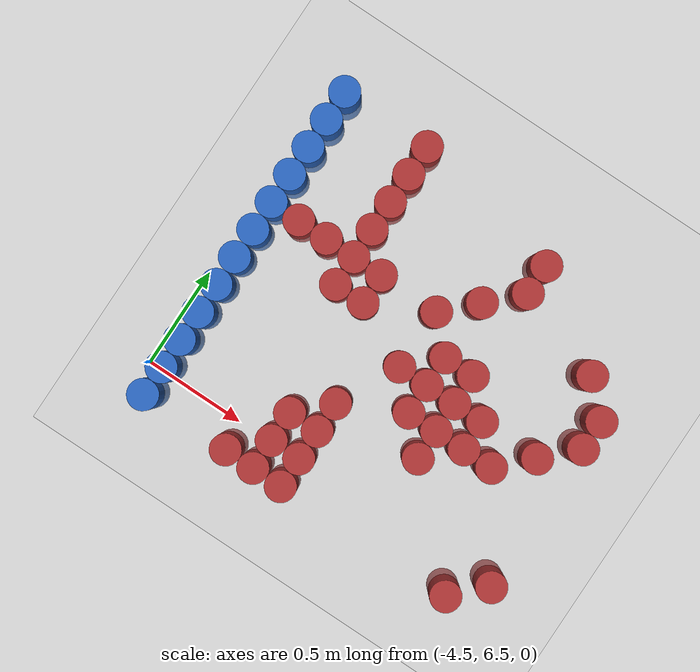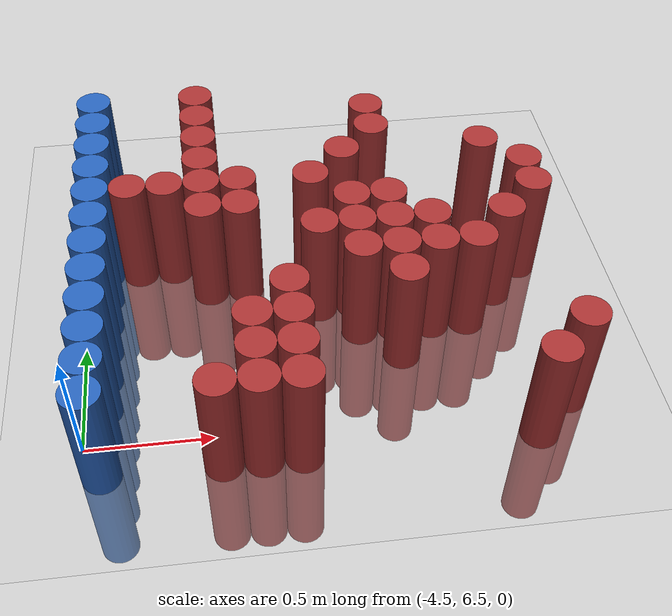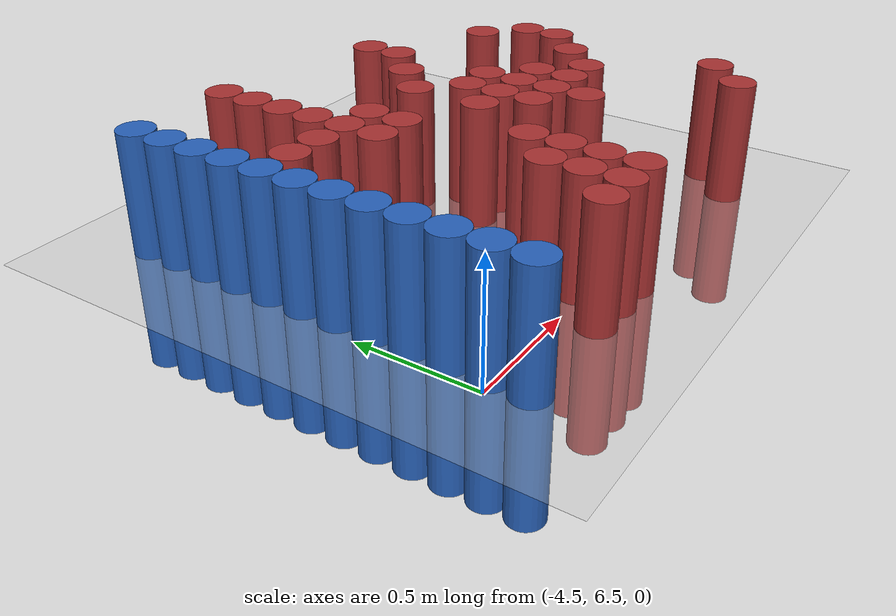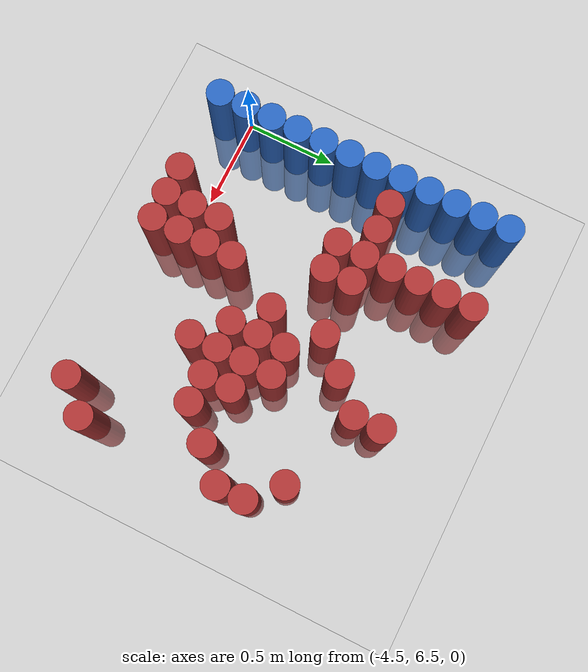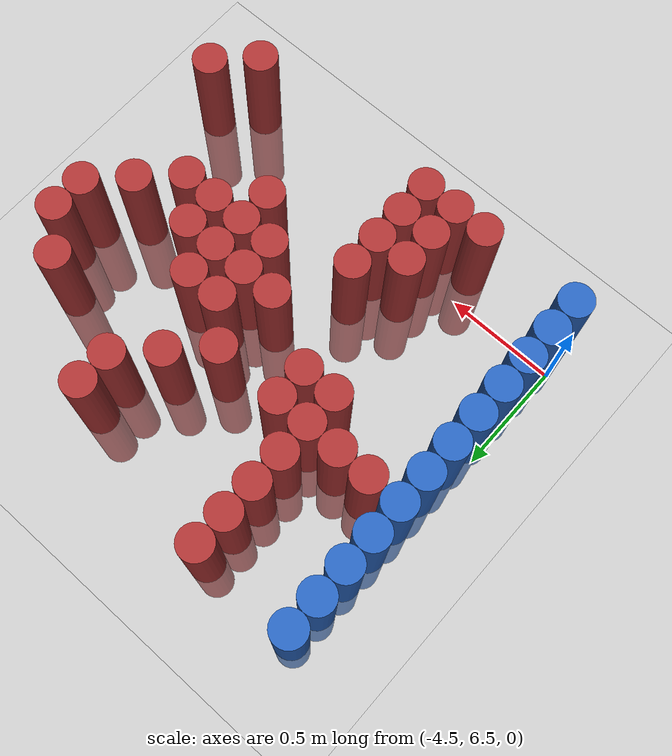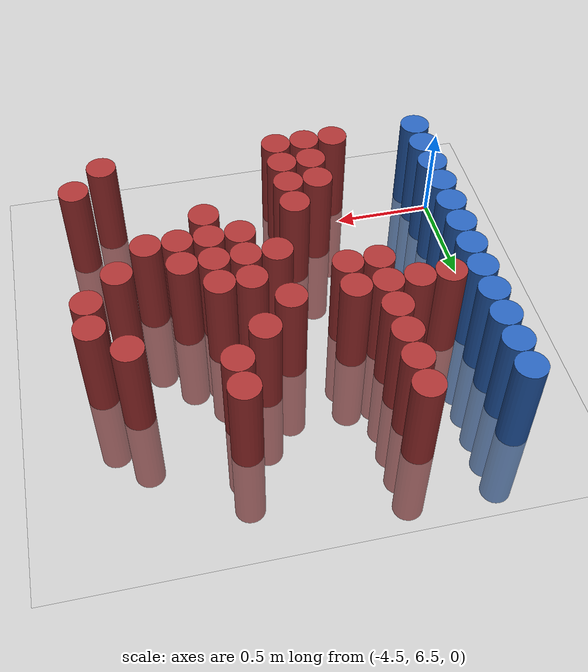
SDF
<sdf version="1.6">
 <world name="default">
  <model name="ground_plane">
   <static>1</static>
   <link name="link">
    <collision name="collision">
     <geometry><plane><normal>0 0 1</normal><size>100 100</size></plane></geometry>
     <surface><friction><ode><mu>100</mu><mu2>50</mu2></ode></friction></surface>
    </collision>
    <visual name="visual">
     <cast_shadows>0</cast_shadows>
     <geometry><plane><normal>0 0 1</normal><size>100 100</size></plane></geometry>
     <material>
      <script><uri>file://media/materials/scripts/gazebo.material</uri><name>Gazebo/Grey</name></script>
     </material>
    </visual>
   </link>
  </model>
  <model name="unit_cylinder_104">
   <static>1</static>
   <pose>-4.425000 6.375000 0.000000 0.000000 0.000000 0.000000</pose>
   <link name="link">
    <inertial>
     <mass>1</mass>
     <inertia><ixx>0.145833</ixx><ixy>0</ixy><ixz>0</ixz><iyy>0.145833</iyy><iyz>0</iyz><izz>0.125</izz></inertia>
    </inertial>
    <collision name="collision">
     <geometry><cylinder><radius>0.075000</radius><length>1</length></cylinder></geometry>
    </collision>
    <visual name="visual">
     <geometry><cylinder><radius>0.075000</radius><length>1</length></cylinder></geometry>
     <material>
      <ambient>0.152000 0.379000 0.720000 1</ambient>
      <diffuse>0.152000 0.379000 0.720000 1</diffuse>
     </material>
     <material>
      <script><name>Gazebo/Grey</name><uri>file://media/materials/scripts/gazebo.material</uri></script>
     </material>
    </visual>
   </link>
  </model>
  <model name="unit_cylinder_105">
   <static>1</static>
   <pose>-4.425000 6.525000 0.000000 0.000000 0.000000 0.000000</pose>
   <link name="link">
    <inertial>
     <mass>1</mass>
     <inertia><ixx>0.145833</ixx><ixy>0</ixy><ixz>0</ixz><iyy>0.145833</iyy><iyz>0</iyz><izz>0.125</izz></inertia>
    </inertial>
    <collision name="collision">
     <geometry><cylinder><radius>0.075000</radius><length>1</length></cylinder></geometry>
    </collision>
    <visual name="visual">
     <geometry><cylinder><radius>0.075000</radius><length>1</length></cylinder></geometry>
     <material>
      <ambient>0.152000 0.379000 0.720000 1</ambient>
      <diffuse>0.152000 0.379000 0.720000 1</diffuse>
     </material>
     <material>
      <script><name>Gazebo/Grey</name><uri>file://media/materials/scripts/gazebo.material</uri></script>
     </material>
    </visual>
   </link>
  </model>
  <model name="unit_cylinder_106">
   <static>1</static>
   <pose>-4.425000 6.675000 0.000000 0.000000 0.000000 0.000000</pose>
   <link name="link">
    <inertial>
     <mass>1</mass>
     <inertia><ixx>0.145833</ixx><ixy>0</ixy><ixz>0</ixz><iyy>0.145833</iyy><iyz>0</iyz><izz>0.125</izz></inertia>
    </inertial>
    <collision name="collision">
     <geometry><cylinder><radius>0.075000</radius><length>1</length></cylinder></geometry>
    </collision>
    <visual name="visual">
     <geometry><cylinder><radius>0.075000</radius><length>1</length></cylinder></geometry>
     <material>
      <ambient>0.152000 0.379000 0.720000 1</ambient>
      <diffuse>0.152000 0.379000 0.720000 1</diffuse>
     </material>
     <material>
      <script><name>Gazebo/Grey</name><uri>file://media/materials/scripts/gazebo.material</uri></script>
     </material>
    </visual>
   </link>
  </model>
  <model name="unit_cylinder_107">
   <static>1</static>
   <pose>-4.425000 6.825000 0.000000 0.000000 0.000000 0.000000</pose>
   <link name="link">
    <inertial>
     <mass>1</mass>
     <inertia><ixx>0.145833</ixx><ixy>0</ixy><ixz>0</ixz><iyy>0.145833</iyy><iyz>0</iyz><izz>0.125</izz></inertia>
    </inertial>
    <collision name="collision">
     <geometry><cylinder><radius>0.075000</radius><length>1</length></cylinder></geometry>
    </collision>
    <visual name="visual">
     <geometry><cylinder><radius>0.075000</radius><length>1</length></cylinder></geometry>
     <material>
      <ambient>0.152000 0.379000 0.720000 1</ambient>
      <diffuse>0.152000 0.379000 0.720000 1</diffuse>
     </material>
     <material>
      <script><name>Gazebo/Grey</name><uri>file://media/materials/scripts/gazebo.material</uri></script>
     </material>
    </visual>
   </link>
  </model>
  <model name="unit_cylinder_108">
   <static>1</static>
   <pose>-4.425000 6.975000 0.000000 0.000000 0.000000 0.000000</pose>
   <link name="link">
    <inertial>
     <mass>1</mass>
     <inertia><ixx>0.145833</ixx><ixy>0</ixy><ixz>0</ixz><iyy>0.145833</iyy><iyz>0</iyz><izz>0.125</izz></inertia>
    </inertial>
    <collision name="collision">
     <geometry><cylinder><radius>0.075000</radius><length>1</length></cylinder></geometry>
    </collision>
    <visual name="visual">
     <geometry><cylinder><radius>0.075000</radius><length>1</length></cylinder></geometry>
     <material>
      <ambient>0.152000 0.379000 0.720000 1</ambient>
      <diffuse>0.152000 0.379000 0.720000 1</diffuse>
     </material>
     <material>
      <script><name>Gazebo/Grey</name><uri>file://media/materials/scripts/gazebo.material</uri></script>
     </material>
    </visual>
   </link>
  </model>
  <model name="unit_cylinder_109">
   <static>1</static>
   <pose>-4.425000 7.125000 0.000000 0.000000 0.000000 0.000000</pose>
   <link name="link">
    <inertial>
     <mass>1</mass>
     <inertia><ixx>0.145833</ixx><ixy>0</ixy><ixz>0</ixz><iyy>0.145833</iyy><iyz>0</iyz><izz>0.125</izz></inertia>
    </inertial>
    <collision name="collision">
     <geometry><cylinder><radius>0.075000</radius><length>1</length></cylinder></geometry>
    </collision>
    <visual name="visual">
     <geometry><cylinder><radius>0.075000</radius><length>1</length></cylinder></geometry>
     <material>
      <ambient>0.152000 0.379000 0.720000 1</ambient>
      <diffuse>0.152000 0.379000 0.720000 1</diffuse>
     </material>
     <material>
      <script><name>Gazebo/Grey</name><uri>file://media/materials/scripts/gazebo.material</uri></script>
     </material>
    </visual>
   </link>
  </model>
  <model name="unit_cylinder_110">
   <static>1</static>
   <pose>-4.425000 7.275000 0.000000 0.000000 0.000000 0.000000</pose>
   <link name="link">
    <inertial>
     <mass>1</mass>
     <inertia><ixx>0.145833</ixx><ixy>0</ixy><ixz>0</ixz><iyy>0.145833</iyy><iyz>0</iyz><izz>0.125</izz></inertia>
    </inertial>
    <collision name="collision">
     <geometry><cylinder><radius>0.075000</radius><length>1</length></cylinder></geometry>
    </collision>
    <visual name="visual">
     <geometry><cylinder><radius>0.075000</radius><length>1</length></cylinder></geometry>
     <material>
      <ambient>0.152000 0.379000 0.720000 1</ambient>
      <diffuse>0.152000 0.379000 0.720000 1</diffuse>
     </material>
     <material>
      <script><name>Gazebo/Grey</name><uri>file://media/materials/scripts/gazebo.material</uri></script>
     </material>
    </visual>
   </link>
  </model>
  <model name="unit_cylinder_111">
   <static>1</static>
   <pose>-4.425000 7.425000 0.000000 0.000000 0.000000 0.000000</pose>
   <link name="link">
    <inertial>
     <mass>1</mass>
     <inertia><ixx>0.145833</ixx><ixy>0</ixy><ixz>0</ixz><iyy>0.145833</iyy><iyz>0</iyz><izz>0.125</izz></inertia>
    </inertial>
    <collision name="collision">
     <geometry><cylinder><radius>0.075000</radius><length>1</length></cylinder></geometry>
    </collision>
    <visual name="visual">
     <geometry><cylinder><radius>0.075000</radius><length>1</length></cylinder></geometry>
     <material>
      <ambient>0.152000 0.379000 0.720000 1</ambient>
      <diffuse>0.152000 0.379000 0.720000 1</diffuse>
     </material>
     <material>
      <script><name>Gazebo/Grey</name><uri>file://media/materials/scripts/gazebo.material</uri></script>
     </material>
    </visual>
   </link>
  </model>
  <model name="unit_cylinder_112">
   <static>1</static>
   <pose>-4.425000 7.575000 0.000000 0.000000 0.000000 0.000000</pose>
   <link name="link">
    <inertial>
     <mass>1</mass>
     <inertia><ixx>0.145833</ixx><ixy>0</ixy><ixz>0</ixz><iyy>0.145833</iyy><iyz>0</iyz><izz>0.125</izz></inertia>
    </inertial>
    <collision name="collision">
     <geometry><cylinder><radius>0.075000</radius><length>1</length></cylinder></geometry>
    </collision>
    <visual name="visual">
     <geometry><cylinder><radius>0.075000</radius><length>1</length></cylinder></geometry>
     <material>
      <ambient>0.152000 0.379000 0.720000 1</ambient>
      <diffuse>0.152000 0.379000 0.720000 1</diffuse>
     </material>
     <material>
      <script><name>Gazebo/Grey</name><uri>file://media/materials/scripts/gazebo.material</uri></script>
     </material>
    </visual>
   </link>
  </model>
  <model name="unit_cylinder_113">
   <static>1</static>
   <pose>-4.425000 7.725000 0.000000 0.000000 0.000000 0.000000</pose>
   <link name="link">
    <inertial>
     <mass>1</mass>
     <inertia><ixx>0.145833</ixx><ixy>0</ixy><ixz>0</ixz><iyy>0.145833</iyy><iyz>0</iyz><izz>0.125</izz></inertia>
    </inertial>
    <collision name="collision">
     <geometry><cylinder><radius>0.075000</radius><length>1</length></cylinder></geometry>
    </collision>
    <visual name="visual">
     <geometry><cylinder><radius>0.075000</radius><length>1</length></cylinder></geometry>
     <material>
      <ambient>0.152000 0.379000 0.720000 1</ambient>
      <diffuse>0.152000 0.379000 0.720000 1</diffuse>
     </material>
     <material>
      <script><name>Gazebo/Grey</name><uri>file://media/materials/scripts/gazebo.material</uri></script>
     </material>
    </visual>
   </link>
  </model>
  <model name="unit_cylinder_114">
   <static>1</static>
   <pose>-4.425000 7.875000 0.000000 0.000000 0.000000 0.000000</pose>
   <link name="link">
    <inertial>
     <mass>1</mass>
     <inertia><ixx>0.145833</ixx><ixy>0</ixy><ixz>0</ixz><iyy>0.145833</iyy><iyz>0</iyz><izz>0.125</izz></inertia>
    </inertial>
    <collision name="collision">
     <geometry><cylinder><radius>0.075000</radius><length>1</length></cylinder></geometry>
    </collision>
    <visual name="visual">
     <geometry><cylinder><radius>0.075000</radius><length>1</length></cylinder></geometry>
     <material>
      <ambient>0.152000 0.379000 0.720000 1</ambient>
      <diffuse>0.152000 0.379000 0.720000 1</diffuse>
     </material>
     <material>
      <script><name>Gazebo/Grey</name><uri>file://media/materials/scripts/gazebo.material</uri></script>
     </material>
    </visual>
   </link>
  </model>
  <model name="unit_cylinder_115">
   <static>1</static>
   <pose>-4.425000 8.025000 0.000000 0.000000 0.000000 0.000000</pose>
   <link name="link">
    <inertial>
     <mass>1</mass>
     <inertia><ixx>0.145833</ixx><ixy>0</ixy><ixz>0</ixz><iyy>0.145833</iyy><iyz>0</iyz><izz>0.125</izz></inertia>
    </inertial>
    <collision name="collision">
     <geometry><cylinder><radius>0.075000</radius><length>1</length></cylinder></geometry>
    </collision>
    <visual name="visual">
     <geometry><cylinder><radius>0.075000</radius><length>1</length></cylinder></geometry>
     <material>
      <ambient>0.152000 0.379000 0.720000 1</ambient>
      <diffuse>0.152000 0.379000 0.720000 1</diffuse>
     </material>
     <material>
      <script><name>Gazebo/Grey</name><uri>file://media/materials/scripts/gazebo.material</uri></script>
     </material>
    </visual>
   </link>
  </model>
  <model name="unit_cylinder_131">
   <static>1</static>
   <pose>-4.275000 7.425000 0.000000 0.000000 0.000000 0.000000</pose>
   <link name="link">
    <inertial>
     <mass>1</mass>
     <inertia><ixx>0.145833</ixx><ixy>0</ixy><ixz>0</ixz><iyy>0.145833</iyy><iyz>0</iyz><izz>0.125</izz></inertia>
    </inertial>
    <collision name="collision">
     <geometry><cylinder><radius>0.075000</radius><length>1</length></cylinder></geometry>
    </collision>
    <visual name="visual">
     <geometry><cylinder><radius>0.075000</radius><length>1</length></cylinder></geometry>
     <material>
      <ambient>0.648000 0.192000 0.192000 1</ambient>
      <diffuse>0.648000 0.192000 0.192000 1</diffuse>
     </material>
     <material>
      <script><name>Gazebo/Grey</name><uri>file://media/materials/scripts/gazebo.material</uri></script>
     </material>
    </visual>
   </link>
  </model>
  <model name="unit_cylinder_139">
   <static>1</static>
   <pose>-4.125000 7.425000 0.000000 0.000000 0.000000 0.000000</pose>
   <link name="link">
    <inertial>
     <mass>1</mass>
     <inertia><ixx>0.145833</ixx><ixy>0</ixy><ixz>0</ixz><iyy>0.145833</iyy><iyz>0</iyz><izz>0.125</izz></inertia>
    </inertial>
    <collision name="collision">
     <geometry><cylinder><radius>0.075000</radius><length>1</length></cylinder></geometry>
    </collision>
    <visual name="visual">
     <geometry><cylinder><radius>0.075000</radius><length>1</length></cylinder></geometry>
     <material>
      <ambient>0.648000 0.192000 0.192000 1</ambient>
      <diffuse>0.648000 0.192000 0.192000 1</diffuse>
     </material>
     <material>
      <script><name>Gazebo/Grey</name><uri>file://media/materials/scripts/gazebo.material</uri></script>
     </material>
    </visual>
   </link>
  </model>
  <model name="unit_cylinder_145">
   <static>1</static>
   <pose>-3.975000 6.375000 0.000000 0.000000 0.000000 0.000000</pose>
   <link name="link">
    <inertial>
     <mass>1</mass>
     <inertia><ixx>0.145833</ixx><ixy>0</ixy><ixz>0</ixz><iyy>0.145833</iyy><iyz>0</iyz><izz>0.125</izz></inertia>
    </inertial>
    <collision name="collision">
     <geometry><cylinder><radius>0.075000</radius><length>1</length></cylinder></geometry>
    </collision>
    <visual name="visual">
     <geometry><cylinder><radius>0.075000</radius><length>1</length></cylinder></geometry>
     <material>
      <ambient>0.648000 0.192000 0.192000 1</ambient>
      <diffuse>0.648000 0.192000 0.192000 1</diffuse>
     </material>
     <material>
      <script><name>Gazebo/Grey</name><uri>file://media/materials/scripts/gazebo.material</uri></script>
     </material>
    </visual>
   </link>
  </model>
  <model name="unit_cylinder_146">
   <static>1</static>
   <pose>-3.975000 7.275000 0.000000 0.000000 0.000000 0.000000</pose>
   <link name="link">
    <inertial>
     <mass>1</mass>
     <inertia><ixx>0.145833</ixx><ixy>0</ixy><ixz>0</ixz><iyy>0.145833</iyy><iyz>0</iyz><izz>0.125</izz></inertia>
    </inertial>
    <collision name="collision">
     <geometry><cylinder><radius>0.075000</radius><length>1</length></cylinder></geometry>
    </collision>
    <visual name="visual">
     <geometry><cylinder><radius>0.075000</radius><length>1</length></cylinder></geometry>
     <material>
      <ambient>0.648000 0.192000 0.192000 1</ambient>
      <diffuse>0.648000 0.192000 0.192000 1</diffuse>
     </material>
     <material>
      <script><name>Gazebo/Grey</name><uri>file://media/materials/scripts/gazebo.material</uri></script>
     </material>
    </visual>
   </link>
  </model>
  <model name="unit_cylinder_147">
   <static>1</static>
   <pose>-3.975000 7.425000 0.000000 0.000000 0.000000 0.000000</pose>
   <link name="link">
    <inertial>
     <mass>1</mass>
     <inertia><ixx>0.145833</ixx><ixy>0</ixy><ixz>0</ixz><iyy>0.145833</iyy><iyz>0</iyz><izz>0.125</izz></inertia>
    </inertial>
    <collision name="collision">
     <geometry><cylinder><radius>0.075000</radius><length>1</length></cylinder></geometry>
    </collision>
    <visual name="visual">
     <geometry><cylinder><radius>0.075000</radius><length>1</length></cylinder></geometry>
     <material>
      <ambient>0.648000 0.192000 0.192000 1</ambient>
      <diffuse>0.648000 0.192000 0.192000 1</diffuse>
     </material>
     <material>
      <script><name>Gazebo/Grey</name><uri>file://media/materials/scripts/gazebo.material</uri></script>
     </material>
    </visual>
   </link>
  </model>
  <model name="unit_cylinder_148">
   <static>1</static>
   <pose>-3.975000 7.575000 0.000000 0.000000 0.000000 0.000000</pose>
   <link name="link">
    <inertial>
     <mass>1</mass>
     <inertia><ixx>0.145833</ixx><ixy>0</ixy><ixz>0</ixz><iyy>0.145833</iyy><iyz>0</iyz><izz>0.125</izz></inertia>
    </inertial>
    <collision name="collision">
     <geometry><cylinder><radius>0.075000</radius><length>1</length></cylinder></geometry>
    </collision>
    <visual name="visual">
     <geometry><cylinder><radius>0.075000</radius><length>1</length></cylinder></geometry>
     <material>
      <ambient>0.648000 0.192000 0.192000 1</ambient>
      <diffuse>0.648000 0.192000 0.192000 1</diffuse>
     </material>
     <material>
      <script><name>Gazebo/Grey</name><uri>file://media/materials/scripts/gazebo.material</uri></script>
     </material>
    </visual>
   </link>
  </model>
  <model name="unit_cylinder_149">
   <static>1</static>
   <pose>-3.975000 7.725000 0.000000 0.000000 0.000000 0.000000</pose>
   <link name="link">
    <inertial>
     <mass>1</mass>
     <inertia><ixx>0.145833</ixx><ixy>0</ixy><ixz>0</ixz><iyy>0.145833</iyy><iyz>0</iyz><izz>0.125</izz></inertia>
    </inertial>
    <collision name="collision">
     <geometry><cylinder><radius>0.075000</radius><length>1</length></cylinder></geometry>
    </collision>
    <visual name="visual">
     <geometry><cylinder><radius>0.075000</radius><length>1</length></cylinder></geometry>
     <material>
      <ambient>0.648000 0.192000 0.192000 1</ambient>
      <diffuse>0.648000 0.192000 0.192000 1</diffuse>
     </material>
     <material>
      <script><name>Gazebo/Grey</name><uri>file://media/materials/scripts/gazebo.material</uri></script>
     </material>
    </visual>
   </link>
  </model>
  <model name="unit_cylinder_150">
   <static>1</static>
   <pose>-3.975000 7.875000 0.000000 0.000000 0.000000 0.000000</pose>
   <link name="link">
    <inertial>
     <mass>1</mass>
     <inertia><ixx>0.145833</ixx><ixy>0</ixy><ixz>0</ixz><iyy>0.145833</iyy><iyz>0</iyz><izz>0.125</izz></inertia>
    </inertial>
    <collision name="collision">
     <geometry><cylinder><radius>0.075000</radius><length>1</length></cylinder></geometry>
    </collision>
    <visual name="visual">
     <geometry><cylinder><radius>0.075000</radius><length>1</length></cylinder></geometry>
     <material>
      <ambient>0.648000 0.192000 0.192000 1</ambient>
      <diffuse>0.648000 0.192000 0.192000 1</diffuse>
     </material>
     <material>
      <script><name>Gazebo/Grey</name><uri>file://media/materials/scripts/gazebo.material</uri></script>
     </material>
    </visual>
   </link>
  </model>
  <model name="unit_cylinder_151">
   <static>1</static>
   <pose>-3.975000 8.025000 0.000000 0.000000 0.000000 0.000000</pose>
   <link name="link">
    <inertial>
     <mass>1</mass>
     <inertia><ixx>0.145833</ixx><ixy>0</ixy><ixz>0</ixz><iyy>0.145833</iyy><iyz>0</iyz><izz>0.125</izz></inertia>
    </inertial>
    <collision name="collision">
     <geometry><cylinder><radius>0.075000</radius><length>1</length></cylinder></geometry>
    </collision>
    <visual name="visual">
     <geometry><cylinder><radius>0.075000</radius><length>1</length></cylinder></geometry>
     <material>
      <ambient>0.648000 0.192000 0.192000 1</ambient>
      <diffuse>0.648000 0.192000 0.192000 1</diffuse>
     </material>
     <material>
      <script><name>Gazebo/Grey</name><uri>file://media/materials/scripts/gazebo.material</uri></script>
     </material>
    </visual>
   </link>
  </model>
  <model name="unit_cylinder_159">
   <static>1</static>
   <pose>-3.825000 6.375000 0.000000 0.000000 0.000000 0.000000</pose>
   <link name="link">
    <inertial>
     <mass>1</mass>
     <inertia><ixx>0.145833</ixx><ixy>0</ixy><ixz>0</ixz><iyy>0.145833</iyy><iyz>0</iyz><izz>0.125</izz></inertia>
    </inertial>
    <collision name="collision">
     <geometry><cylinder><radius>0.075000</radius><length>1</length></cylinder></geometry>
    </collision>
    <visual name="visual">
     <geometry><cylinder><radius>0.075000</radius><length>1</length></cylinder></geometry>
     <material>
      <ambient>0.648000 0.192000 0.192000 1</ambient>
      <diffuse>0.648000 0.192000 0.192000 1</diffuse>
     </material>
     <material>
      <script><name>Gazebo/Grey</name><uri>file://media/materials/scripts/gazebo.material</uri></script>
     </material>
    </visual>
   </link>
  </model>
  <model name="unit_cylinder_160">
   <static>1</static>
   <pose>-3.825000 6.525000 0.000000 0.000000 0.000000 0.000000</pose>
   <link name="link">
    <inertial>
     <mass>1</mass>
     <inertia><ixx>0.145833</ixx><ixy>0</ixy><ixz>0</ixz><iyy>0.145833</iyy><iyz>0</iyz><izz>0.125</izz></inertia>
    </inertial>
    <collision name="collision">
     <geometry><cylinder><radius>0.075000</radius><length>1</length></cylinder></geometry>
    </collision>
    <visual name="visual">
     <geometry><cylinder><radius>0.075000</radius><length>1</length></cylinder></geometry>
     <material>
      <ambient>0.648000 0.192000 0.192000 1</ambient>
      <diffuse>0.648000 0.192000 0.192000 1</diffuse>
     </material>
     <material>
      <script><name>Gazebo/Grey</name><uri>file://media/materials/scripts/gazebo.material</uri></script>
     </material>
    </visual>
   </link>
  </model>
  <model name="unit_cylinder_161">
   <static>1</static>
   <pose>-3.825000 6.675000 0.000000 0.000000 0.000000 0.000000</pose>
   <link name="link">
    <inertial>
     <mass>1</mass>
     <inertia><ixx>0.145833</ixx><ixy>0</ixy><ixz>0</ixz><iyy>0.145833</iyy><iyz>0</iyz><izz>0.125</izz></inertia>
    </inertial>
    <collision name="collision">
     <geometry><cylinder><radius>0.075000</radius><length>1</length></cylinder></geometry>
    </collision>
    <visual name="visual">
     <geometry><cylinder><radius>0.075000</radius><length>1</length></cylinder></geometry>
     <material>
      <ambient>0.648000 0.192000 0.192000 1</ambient>
      <diffuse>0.648000 0.192000 0.192000 1</diffuse>
     </material>
     <material>
      <script><name>Gazebo/Grey</name><uri>file://media/materials/scripts/gazebo.material</uri></script>
     </material>
    </visual>
   </link>
  </model>
  <model name="unit_cylinder_162">
   <static>1</static>
   <pose>-3.825000 7.275000 0.000000 0.000000 0.000000 0.000000</pose>
   <link name="link">
    <inertial>
     <mass>1</mass>
     <inertia><ixx>0.145833</ixx><ixy>0</ixy><ixz>0</ixz><iyy>0.145833</iyy><iyz>0</iyz><izz>0.125</izz></inertia>
    </inertial>
    <collision name="collision">
     <geometry><cylinder><radius>0.075000</radius><length>1</length></cylinder></geometry>
    </collision>
    <visual name="visual">
     <geometry><cylinder><radius>0.075000</radius><length>1</length></cylinder></geometry>
     <material>
      <ambient>0.648000 0.192000 0.192000 1</ambient>
      <diffuse>0.648000 0.192000 0.192000 1</diffuse>
     </material>
     <material>
      <script><name>Gazebo/Grey</name><uri>file://media/materials/scripts/gazebo.material</uri></script>
     </material>
    </visual>
   </link>
  </model>
  <model name="unit_cylinder_163">
   <static>1</static>
   <pose>-3.825000 7.425000 0.000000 0.000000 0.000000 0.000000</pose>
   <link name="link">
    <inertial>
     <mass>1</mass>
     <inertia><ixx>0.145833</ixx><ixy>0</ixy><ixz>0</ixz><iyy>0.145833</iyy><iyz>0</iyz><izz>0.125</izz></inertia>
    </inertial>
    <collision name="collision">
     <geometry><cylinder><radius>0.075000</radius><length>1</length></cylinder></geometry>
    </collision>
    <visual name="visual">
     <geometry><cylinder><radius>0.075000</radius><length>1</length></cylinder></geometry>
     <material>
      <ambient>0.648000 0.192000 0.192000 1</ambient>
      <diffuse>0.648000 0.192000 0.192000 1</diffuse>
     </material>
     <material>
      <script><name>Gazebo/Grey</name><uri>file://media/materials/scripts/gazebo.material</uri></script>
     </material>
    </visual>
   </link>
  </model>
  <model name="unit_cylinder_172">
   <static>1</static>
   <pose>-3.675000 6.375000 0.000000 0.000000 0.000000 0.000000</pose>
   <link name="link">
    <inertial>
     <mass>1</mass>
     <inertia><ixx>0.145833</ixx><ixy>0</ixy><ixz>0</ixz><iyy>0.145833</iyy><iyz>0</iyz><izz>0.125</izz></inertia>
    </inertial>
    <collision name="collision">
     <geometry><cylinder><radius>0.075000</radius><length>1</length></cylinder></geometry>
    </collision>
    <visual name="visual">
     <geometry><cylinder><radius>0.075000</radius><length>1</length></cylinder></geometry>
     <material>
      <ambient>0.648000 0.192000 0.192000 1</ambient>
      <diffuse>0.648000 0.192000 0.192000 1</diffuse>
     </material>
     <material>
      <script><name>Gazebo/Grey</name><uri>file://media/materials/scripts/gazebo.material</uri></script>
     </material>
    </visual>
   </link>
  </model>
  <model name="unit_cylinder_173">
   <static>1</static>
   <pose>-3.675000 6.525000 0.000000 0.000000 0.000000 0.000000</pose>
   <link name="link">
    <inertial>
     <mass>1</mass>
     <inertia><ixx>0.145833</ixx><ixy>0</ixy><ixz>0</ixz><iyy>0.145833</iyy><iyz>0</iyz><izz>0.125</izz></inertia>
    </inertial>
    <collision name="collision">
     <geometry><cylinder><radius>0.075000</radius><length>1</length></cylinder></geometry>
    </collision>
    <visual name="visual">
     <geometry><cylinder><radius>0.075000</radius><length>1</length></cylinder></geometry>
     <material>
      <ambient>0.648000 0.192000 0.192000 1</ambient>
      <diffuse>0.648000 0.192000 0.192000 1</diffuse>
     </material>
     <material>
      <script><name>Gazebo/Grey</name><uri>file://media/materials/scripts/gazebo.material</uri></script>
     </material>
    </visual>
   </link>
  </model>
  <model name="unit_cylinder_174">
   <static>1</static>
   <pose>-3.675000 6.675000 0.000000 0.000000 0.000000 0.000000</pose>
   <link name="link">
    <inertial>
     <mass>1</mass>
     <inertia><ixx>0.145833</ixx><ixy>0</ixy><ixz>0</ixz><iyy>0.145833</iyy><iyz>0</iyz><izz>0.125</izz></inertia>
    </inertial>
    <collision name="collision">
     <geometry><cylinder><radius>0.075000</radius><length>1</length></cylinder></geometry>
    </collision>
    <visual name="visual">
     <geometry><cylinder><radius>0.075000</radius><length>1</length></cylinder></geometry>
     <material>
      <ambient>0.648000 0.192000 0.192000 1</ambient>
      <diffuse>0.648000 0.192000 0.192000 1</diffuse>
     </material>
     <material>
      <script><name>Gazebo/Grey</name><uri>file://media/materials/scripts/gazebo.material</uri></script>
     </material>
    </visual>
   </link>
  </model>
  <model name="unit_cylinder_175">
   <static>1</static>
   <pose>-3.675000 6.825000 0.000000 0.000000 0.000000 0.000000</pose>
   <link name="link">
    <inertial>
     <mass>1</mass>
     <inertia><ixx>0.145833</ixx><ixy>0</ixy><ixz>0</ixz><iyy>0.145833</iyy><iyz>0</iyz><izz>0.125</izz></inertia>
    </inertial>
    <collision name="collision">
     <geometry><cylinder><radius>0.075000</radius><length>1</length></cylinder></geometry>
    </collision>
    <visual name="visual">
     <geometry><cylinder><radius>0.075000</radius><length>1</length></cylinder></geometry>
     <material>
      <ambient>0.648000 0.192000 0.192000 1</ambient>
      <diffuse>0.648000 0.192000 0.192000 1</diffuse>
     </material>
     <material>
      <script><name>Gazebo/Grey</name><uri>file://media/materials/scripts/gazebo.material</uri></script>
     </material>
    </visual>
   </link>
  </model>
  <model name="unit_cylinder_180">
   <static>1</static>
   <pose>-3.525000 7.125000 0.000000 0.000000 0.000000 0.000000</pose>
   <link name="link">
    <inertial>
     <mass>1</mass>
     <inertia><ixx>0.145833</ixx><ixy>0</ixy><ixz>0</ixz><iyy>0.145833</iyy><iyz>0</iyz><izz>0.125</izz></inertia>
    </inertial>
    <collision name="collision">
     <geometry><cylinder><radius>0.075000</radius><length>1</length></cylinder></geometry>
    </collision>
    <visual name="visual">
     <geometry><cylinder><radius>0.075000</radius><length>1</length></cylinder></geometry>
     <material>
      <ambient>0.648000 0.192000 0.192000 1</ambient>
      <diffuse>0.648000 0.192000 0.192000 1</diffuse>
     </material>
     <material>
      <script><name>Gazebo/Grey</name><uri>file://media/materials/scripts/gazebo.material</uri></script>
     </material>
    </visual>
   </link>
  </model>
  <model name="unit_cylinder_181">
   <static>1</static>
   <pose>-3.525000 7.425000 0.000000 0.000000 0.000000 0.000000</pose>
   <link name="link">
    <inertial>
     <mass>1</mass>
     <inertia><ixx>0.145833</ixx><ixy>0</ixy><ixz>0</ixz><iyy>0.145833</iyy><iyz>0</iyz><izz>0.125</izz></inertia>
    </inertial>
    <collision name="collision">
     <geometry><cylinder><radius>0.075000</radius><length>1</length></cylinder></geometry>
    </collision>
    <visual name="visual">
     <geometry><cylinder><radius>0.075000</radius><length>1</length></cylinder></geometry>
     <material>
      <ambient>0.648000 0.192000 0.192000 1</ambient>
      <diffuse>0.648000 0.192000 0.192000 1</diffuse>
     </material>
     <material>
      <script><name>Gazebo/Grey</name><uri>file://media/materials/scripts/gazebo.material</uri></script>
     </material>
    </visual>
   </link>
  </model>
  <model name="unit_cylinder_186">
   <static>1</static>
   <pose>-3.375000 6.975000 0.000000 0.000000 0.000000 0.000000</pose>
   <link name="link">
    <inertial>
     <mass>1</mass>
     <inertia><ixx>0.145833</ixx><ixy>0</ixy><ixz>0</ixz><iyy>0.145833</iyy><iyz>0</iyz><izz>0.125</izz></inertia>
    </inertial>
    <collision name="collision">
     <geometry><cylinder><radius>0.075000</radius><length>1</length></cylinder></geometry>
    </collision>
    <visual name="visual">
     <geometry><cylinder><radius>0.075000</radius><length>1</length></cylinder></geometry>
     <material>
      <ambient>0.648000 0.192000 0.192000 1</ambient>
      <diffuse>0.648000 0.192000 0.192000 1</diffuse>
     </material>
     <material>
      <script><name>Gazebo/Grey</name><uri>file://media/materials/scripts/gazebo.material</uri></script>
     </material>
    </visual>
   </link>
  </model>
  <model name="unit_cylinder_187">
   <static>1</static>
   <pose>-3.375000 7.125000 0.000000 0.000000 0.000000 0.000000</pose>
   <link name="link">
    <inertial>
     <mass>1</mass>
     <inertia><ixx>0.145833</ixx><ixy>0</ixy><ixz>0</ixz><iyy>0.145833</iyy><iyz>0</iyz><izz>0.125</izz></inertia>
    </inertial>
    <collision name="collision">
     <geometry><cylinder><radius>0.075000</radius><length>1</length></cylinder></geometry>
    </collision>
    <visual name="visual">
     <geometry><cylinder><radius>0.075000</radius><length>1</length></cylinder></geometry>
     <material>
      <ambient>0.648000 0.192000 0.192000 1</ambient>
      <diffuse>0.648000 0.192000 0.192000 1</diffuse>
     </material>
     <material>
      <script><name>Gazebo/Grey</name><uri>file://media/materials/scripts/gazebo.material</uri></script>
     </material>
    </visual>
   </link>
  </model>
  <model name="unit_cylinder_188">
   <static>1</static>
   <pose>-3.375000 7.275000 0.000000 0.000000 0.000000 0.000000</pose>
   <link name="link">
    <inertial>
     <mass>1</mass>
     <inertia><ixx>0.145833</ixx><ixy>0</ixy><ixz>0</ixz><iyy>0.145833</iyy><iyz>0</iyz><izz>0.125</izz></inertia>
    </inertial>
    <collision name="collision">
     <geometry><cylinder><radius>0.075000</radius><length>1</length></cylinder></geometry>
    </collision>
    <visual name="visual">
     <geometry><cylinder><radius>0.075000</radius><length>1</length></cylinder></geometry>
     <material>
      <ambient>0.648000 0.192000 0.192000 1</ambient>
      <diffuse>0.648000 0.192000 0.192000 1</diffuse>
     </material>
     <material>
      <script><name>Gazebo/Grey</name><uri>file://media/materials/scripts/gazebo.material</uri></script>
     </material>
    </visual>
   </link>
  </model>
  <model name="unit_cylinder_189">
   <static>1</static>
   <pose>-3.375000 7.575000 0.000000 0.000000 0.000000 0.000000</pose>
   <link name="link">
    <inertial>
     <mass>1</mass>
     <inertia><ixx>0.145833</ixx><ixy>0</ixy><ixz>0</ixz><iyy>0.145833</iyy><iyz>0</iyz><izz>0.125</izz></inertia>
    </inertial>
    <collision name="collision">
     <geometry><cylinder><radius>0.075000</radius><length>1</length></cylinder></geometry>
    </collision>
    <visual name="visual">
     <geometry><cylinder><radius>0.075000</radius><length>1</length></cylinder></geometry>
     <material>
      <ambient>0.648000 0.192000 0.192000 1</ambient>
      <diffuse>0.648000 0.192000 0.192000 1</diffuse>
     </material>
     <material>
      <script><name>Gazebo/Grey</name><uri>file://media/materials/scripts/gazebo.material</uri></script>
     </material>
    </visual>
   </link>
  </model>
  <model name="unit_cylinder_195">
   <static>1</static>
   <pose>-3.225000 6.825000 0.000000 0.000000 0.000000 0.000000</pose>
   <link name="link">
    <inertial>
     <mass>1</mass>
     <inertia><ixx>0.145833</ixx><ixy>0</ixy><ixz>0</ixz><iyy>0.145833</iyy><iyz>0</iyz><izz>0.125</izz></inertia>
    </inertial>
    <collision name="collision">
     <geometry><cylinder><radius>0.075000</radius><length>1</length></cylinder></geometry>
    </collision>
    <visual name="visual">
     <geometry><cylinder><radius>0.075000</radius><length>1</length></cylinder></geometry>
     <material>
      <ambient>0.648000 0.192000 0.192000 1</ambient>
      <diffuse>0.648000 0.192000 0.192000 1</diffuse>
     </material>
     <material>
      <script><name>Gazebo/Grey</name><uri>file://media/materials/scripts/gazebo.material</uri></script>
     </material>
    </visual>
   </link>
  </model>
  <model name="unit_cylinder_196">
   <static>1</static>
   <pose>-3.225000 6.975000 0.000000 0.000000 0.000000 0.000000</pose>
   <link name="link">
    <inertial>
     <mass>1</mass>
     <inertia><ixx>0.145833</ixx><ixy>0</ixy><ixz>0</ixz><iyy>0.145833</iyy><iyz>0</iyz><izz>0.125</izz></inertia>
    </inertial>
    <collision name="collision">
     <geometry><cylinder><radius>0.075000</radius><length>1</length></cylinder></geometry>
    </collision>
    <visual name="visual">
     <geometry><cylinder><radius>0.075000</radius><length>1</length></cylinder></geometry>
     <material>
      <ambient>0.648000 0.192000 0.192000 1</ambient>
      <diffuse>0.648000 0.192000 0.192000 1</diffuse>
     </material>
     <material>
      <script><name>Gazebo/Grey</name><uri>file://media/materials/scripts/gazebo.material</uri></script>
     </material>
    </visual>
   </link>
  </model>
  <model name="unit_cylinder_197">
   <static>1</static>
   <pose>-3.225000 7.125000 0.000000 0.000000 0.000000 0.000000</pose>
   <link name="link">
    <inertial>
     <mass>1</mass>
     <inertia><ixx>0.145833</ixx><ixy>0</ixy><ixz>0</ixz><iyy>0.145833</iyy><iyz>0</iyz><izz>0.125</izz></inertia>
    </inertial>
    <collision name="collision">
     <geometry><cylinder><radius>0.075000</radius><length>1</length></cylinder></geometry>
    </collision>
    <visual name="visual">
     <geometry><cylinder><radius>0.075000</radius><length>1</length></cylinder></geometry>
     <material>
      <ambient>0.648000 0.192000 0.192000 1</ambient>
      <diffuse>0.648000 0.192000 0.192000 1</diffuse>
     </material>
     <material>
      <script><name>Gazebo/Grey</name><uri>file://media/materials/scripts/gazebo.material</uri></script>
     </material>
    </visual>
   </link>
  </model>
  <model name="unit_cylinder_198">
   <static>1</static>
   <pose>-3.225000 7.275000 0.000000 0.000000 0.000000 0.000000</pose>
   <link name="link">
    <inertial>
     <mass>1</mass>
     <inertia><ixx>0.145833</ixx><ixy>0</ixy><ixz>0</ixz><iyy>0.145833</iyy><iyz>0</iyz><izz>0.125</izz></inertia>
    </inertial>
    <collision name="collision">
     <geometry><cylinder><radius>0.075000</radius><length>1</length></cylinder></geometry>
    </collision>
    <visual name="visual">
     <geometry><cylinder><radius>0.075000</radius><length>1</length></cylinder></geometry>
     <material>
      <ambient>0.648000 0.192000 0.192000 1</ambient>
      <diffuse>0.648000 0.192000 0.192000 1</diffuse>
     </material>
     <material>
      <script><name>Gazebo/Grey</name><uri>file://media/materials/scripts/gazebo.material</uri></script>
     </material>
    </visual>
   </link>
  </model>
  <model name="unit_cylinder_199">
   <static>1</static>
   <pose>-3.225000 7.725000 0.000000 0.000000 0.000000 0.000000</pose>
   <link name="link">
    <inertial>
     <mass>1</mass>
     <inertia><ixx>0.145833</ixx><ixy>0</ixy><ixz>0</ixz><iyy>0.145833</iyy><iyz>0</iyz><izz>0.125</izz></inertia>
    </inertial>
    <collision name="collision">
     <geometry><cylinder><radius>0.075000</radius><length>1</length></cylinder></geometry>
    </collision>
    <visual name="visual">
     <geometry><cylinder><radius>0.075000</radius><length>1</length></cylinder></geometry>
     <material>
      <ambient>0.648000 0.192000 0.192000 1</ambient>
      <diffuse>0.648000 0.192000 0.192000 1</diffuse>
     </material>
     <material>
      <script><name>Gazebo/Grey</name><uri>file://media/materials/scripts/gazebo.material</uri></script>
     </material>
    </visual>
   </link>
  </model>
  <model name="unit_cylinder_200">
   <static>1</static>
   <pose>-3.225000 7.875000 0.000000 0.000000 0.000000 0.000000</pose>
   <link name="link">
    <inertial>
     <mass>1</mass>
     <inertia><ixx>0.145833</ixx><ixy>0</ixy><ixz>0</ixz><iyy>0.145833</iyy><iyz>0</iyz><izz>0.125</izz></inertia>
    </inertial>
    <collision name="collision">
     <geometry><cylinder><radius>0.075000</radius><length>1</length></cylinder></geometry>
    </collision>
    <visual name="visual">
     <geometry><cylinder><radius>0.075000</radius><length>1</length></cylinder></geometry>
     <material>
      <ambient>0.648000 0.192000 0.192000 1</ambient>
      <diffuse>0.648000 0.192000 0.192000 1</diffuse>
     </material>
     <material>
      <script><name>Gazebo/Grey</name><uri>file://media/materials/scripts/gazebo.material</uri></script>
     </material>
    </visual>
   </link>
  </model>
  <model name="unit_cylinder_209">
   <static>1</static>
   <pose>-3.075000 6.975000 0.000000 0.000000 0.000000 0.000000</pose>
   <link name="link">
    <inertial>
     <mass>1</mass>
     <inertia><ixx>0.145833</ixx><ixy>0</ixy><ixz>0</ixz><iyy>0.145833</iyy><iyz>0</iyz><izz>0.125</izz></inertia>
    </inertial>
    <collision name="collision">
     <geometry><cylinder><radius>0.075000</radius><length>1</length></cylinder></geometry>
    </collision>
    <visual name="visual">
     <geometry><cylinder><radius>0.075000</radius><length>1</length></cylinder></geometry>
     <material>
      <ambient>0.648000 0.192000 0.192000 1</ambient>
      <diffuse>0.648000 0.192000 0.192000 1</diffuse>
     </material>
     <material>
      <script><name>Gazebo/Grey</name><uri>file://media/materials/scripts/gazebo.material</uri></script>
     </material>
    </visual>
   </link>
  </model>
  <model name="unit_cylinder_210">
   <static>1</static>
   <pose>-3.075000 7.125000 0.000000 0.000000 0.000000 0.000000</pose>
   <link name="link">
    <inertial>
     <mass>1</mass>
     <inertia><ixx>0.145833</ixx><ixy>0</ixy><ixz>0</ixz><iyy>0.145833</iyy><iyz>0</iyz><izz>0.125</izz></inertia>
    </inertial>
    <collision name="collision">
     <geometry><cylinder><radius>0.075000</radius><length>1</length></cylinder></geometry>
    </collision>
    <visual name="visual">
     <geometry><cylinder><radius>0.075000</radius><length>1</length></cylinder></geometry>
     <material>
      <ambient>0.648000 0.192000 0.192000 1</ambient>
      <diffuse>0.648000 0.192000 0.192000 1</diffuse>
     </material>
     <material>
      <script><name>Gazebo/Grey</name><uri>file://media/materials/scripts/gazebo.material</uri></script>
     </material>
    </visual>
   </link>
  </model>
  <model name="unit_cylinder_216">
   <static>1</static>
   <pose>-2.925000 6.975000 0.000000 0.000000 0.000000 0.000000</pose>
   <link name="link">
    <inertial>
     <mass>1</mass>
     <inertia><ixx>0.145833</ixx><ixy>0</ixy><ixz>0</ixz><iyy>0.145833</iyy><iyz>0</iyz><izz>0.125</izz></inertia>
    </inertial>
    <collision name="collision">
     <geometry><cylinder><radius>0.075000</radius><length>1</length></cylinder></geometry>
    </collision>
    <visual name="visual">
     <geometry><cylinder><radius>0.075000</radius><length>1</length></cylinder></geometry>
     <material>
      <ambient>0.648000 0.192000 0.192000 1</ambient>
      <diffuse>0.648000 0.192000 0.192000 1</diffuse>
     </material>
     <material>
      <script><name>Gazebo/Grey</name><uri>file://media/materials/scripts/gazebo.material</uri></script>
     </material>
    </visual>
   </link>
  </model>
  <model name="unit_cylinder_219">
   <static>1</static>
   <pose>-2.775000 6.375000 0.000000 0.000000 0.000000 0.000000</pose>
   <link name="link">
    <inertial>
     <mass>1</mass>
     <inertia><ixx>0.145833</ixx><ixy>0</ixy><ixz>0</ixz><iyy>0.145833</iyy><iyz>0</iyz><izz>0.125</izz></inertia>
    </inertial>
    <collision name="collision">
     <geometry><cylinder><radius>0.075000</radius><length>1</length></cylinder></geometry>
    </collision>
    <visual name="visual">
     <geometry><cylinder><radius>0.075000</radius><length>1</length></cylinder></geometry>
     <material>
      <ambient>0.648000 0.192000 0.192000 1</ambient>
      <diffuse>0.648000 0.192000 0.192000 1</diffuse>
     </material>
     <material>
      <script><name>Gazebo/Grey</name><uri>file://media/materials/scripts/gazebo.material</uri></script>
     </material>
    </visual>
   </link>
  </model>
  <model name="unit_cylinder_220">
   <static>1</static>
   <pose>-2.775000 7.125000 0.000000 0.000000 0.000000 0.000000</pose>
   <link name="link">
    <inertial>
     <mass>1</mass>
     <inertia><ixx>0.145833</ixx><ixy>0</ixy><ixz>0</ixz><iyy>0.145833</iyy><iyz>0</iyz><izz>0.125</izz></inertia>
    </inertial>
    <collision name="collision">
     <geometry><cylinder><radius>0.075000</radius><length>1</length></cylinder></geometry>
    </collision>
    <visual name="visual">
     <geometry><cylinder><radius>0.075000</radius><length>1</length></cylinder></geometry>
     <material>
      <ambient>0.648000 0.192000 0.192000 1</ambient>
      <diffuse>0.648000 0.192000 0.192000 1</diffuse>
     </material>
     <material>
      <script><name>Gazebo/Grey</name><uri>file://media/materials/scripts/gazebo.material</uri></script>
     </material>
    </visual>
   </link>
  </model>
  <model name="unit_cylinder_221">
   <static>1</static>
   <pose>-2.775000 7.575000 0.000000 0.000000 0.000000 0.000000</pose>
   <link name="link">
    <inertial>
     <mass>1</mass>
     <inertia><ixx>0.145833</ixx><ixy>0</ixy><ixz>0</ixz><iyy>0.145833</iyy><iyz>0</iyz><izz>0.125</izz></inertia>
    </inertial>
    <collision name="collision">
     <geometry><cylinder><radius>0.075000</radius><length>1</length></cylinder></geometry>
    </collision>
    <visual name="visual">
     <geometry><cylinder><radius>0.075000</radius><length>1</length></cylinder></geometry>
     <material>
      <ambient>0.648000 0.192000 0.192000 1</ambient>
      <diffuse>0.648000 0.192000 0.192000 1</diffuse>
     </material>
     <material>
      <script><name>Gazebo/Grey</name><uri>file://media/materials/scripts/gazebo.material</uri></script>
     </material>
    </visual>
   </link>
  </model>
  <model name="unit_cylinder_224">
   <static>1</static>
   <pose>-2.625000 6.525000 0.000000 0.000000 0.000000 0.000000</pose>
   <link name="link">
    <inertial>
     <mass>1</mass>
     <inertia><ixx>0.145833</ixx><ixy>0</ixy><ixz>0</ixz><iyy>0.145833</iyy><iyz>0</iyz><izz>0.125</izz></inertia>
    </inertial>
    <collision name="collision">
     <geometry><cylinder><radius>0.075000</radius><length>1</length></cylinder></geometry>
    </collision>
    <visual name="visual">
     <geometry><cylinder><radius>0.075000</radius><length>1</length></cylinder></geometry>
     <material>
      <ambient>0.648000 0.192000 0.192000 1</ambient>
      <diffuse>0.648000 0.192000 0.192000 1</diffuse>
     </material>
     <material>
      <script><name>Gazebo/Grey</name><uri>file://media/materials/scripts/gazebo.material</uri></script>
     </material>
    </visual>
   </link>
  </model>
  <model name="unit_cylinder_225">
   <static>1</static>
   <pose>-2.625000 7.275000 0.000000 0.000000 0.000000 0.000000</pose>
   <link name="link">
    <inertial>
     <mass>1</mass>
     <inertia><ixx>0.145833</ixx><ixy>0</ixy><ixz>0</ixz><iyy>0.145833</iyy><iyz>0</iyz><izz>0.125</izz></inertia>
    </inertial>
    <collision name="collision">
     <geometry><cylinder><radius>0.075000</radius><length>1</length></cylinder></geometry>
    </collision>
    <visual name="visual">
     <geometry><cylinder><radius>0.075000</radius><length>1</length></cylinder></geometry>
     <material>
      <ambient>0.648000 0.192000 0.192000 1</ambient>
      <diffuse>0.648000 0.192000 0.192000 1</diffuse>
     </material>
     <material>
      <script><name>Gazebo/Grey</name><uri>file://media/materials/scripts/gazebo.material</uri></script>
     </material>
    </visual>
   </link>
  </model>
  <model name="unit_cylinder_226">
   <static>1</static>
   <pose>-2.625000 7.425000 0.000000 0.000000 0.000000 0.000000</pose>
   <link name="link">
    <inertial>
     <mass>1</mass>
     <inertia><ixx>0.145833</ixx><ixy>0</ixy><ixz>0</ixz><iyy>0.145833</iyy><iyz>0</iyz><izz>0.125</izz></inertia>
    </inertial>
    <collision name="collision">
     <geometry><cylinder><radius>0.075000</radius><length>1</length></cylinder></geometry>
    </collision>
    <visual name="visual">
     <geometry><cylinder><radius>0.075000</radius><length>1</length></cylinder></geometry>
     <material>
      <ambient>0.648000 0.192000 0.192000 1</ambient>
      <diffuse>0.648000 0.192000 0.192000 1</diffuse>
     </material>
     <material>
      <script><name>Gazebo/Grey</name><uri>file://media/materials/scripts/gazebo.material</uri></script>
     </material>
    </visual>
   </link>
  </model>
 </world>
</sdf>
